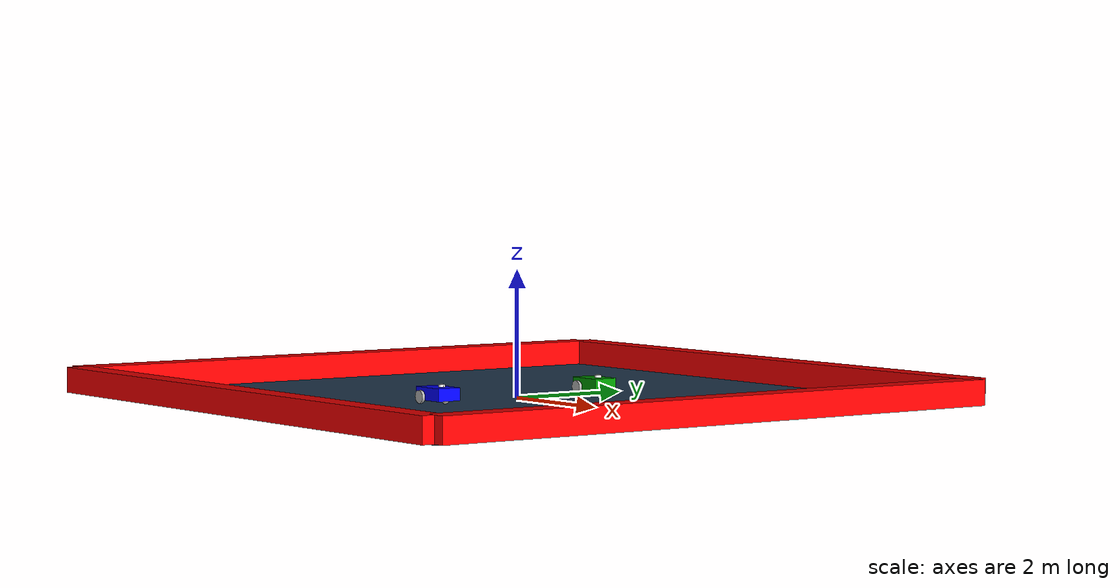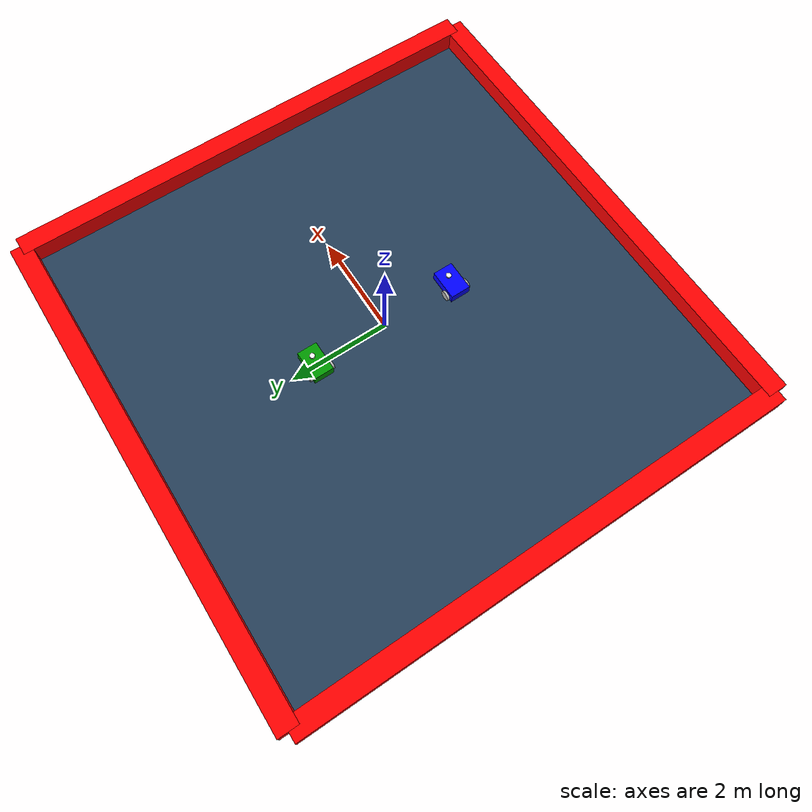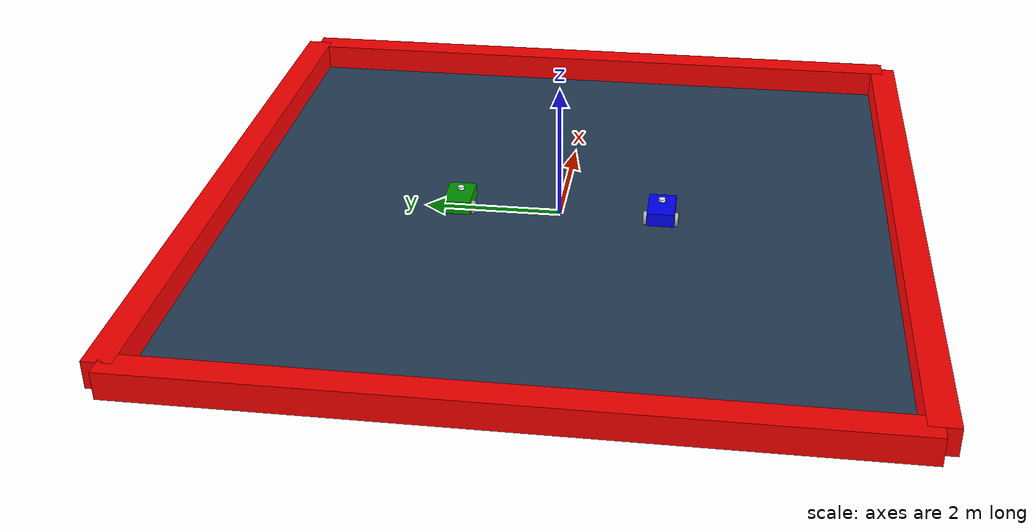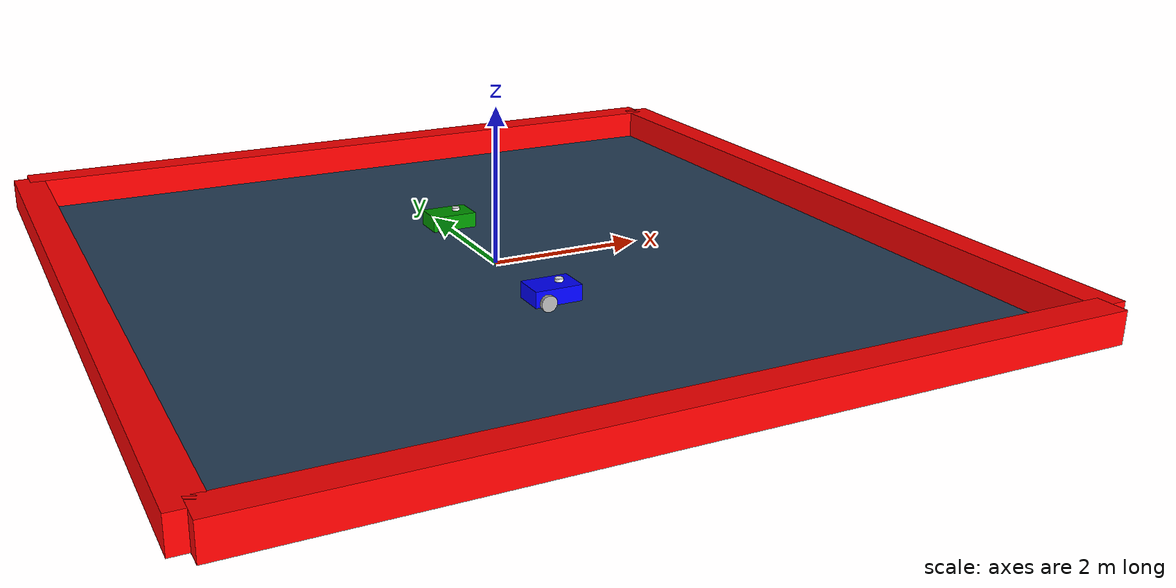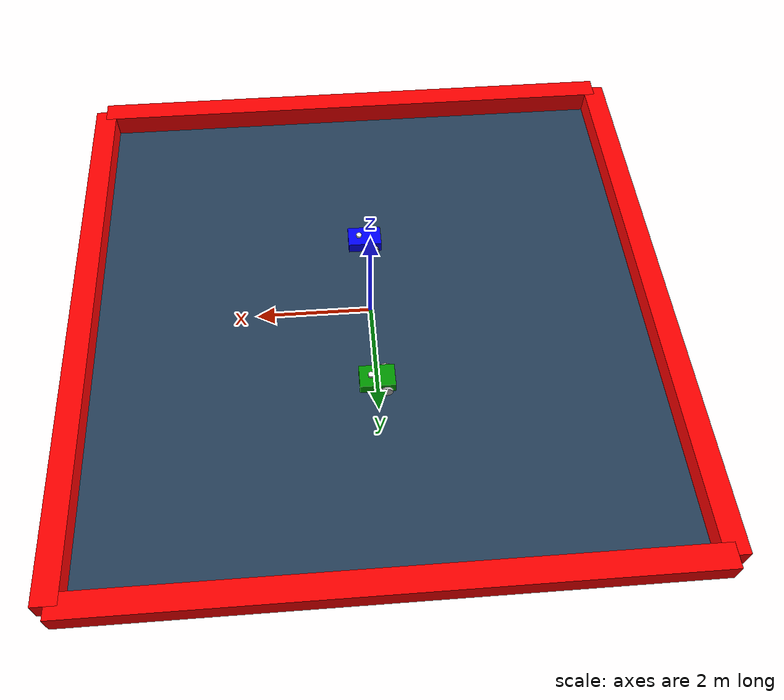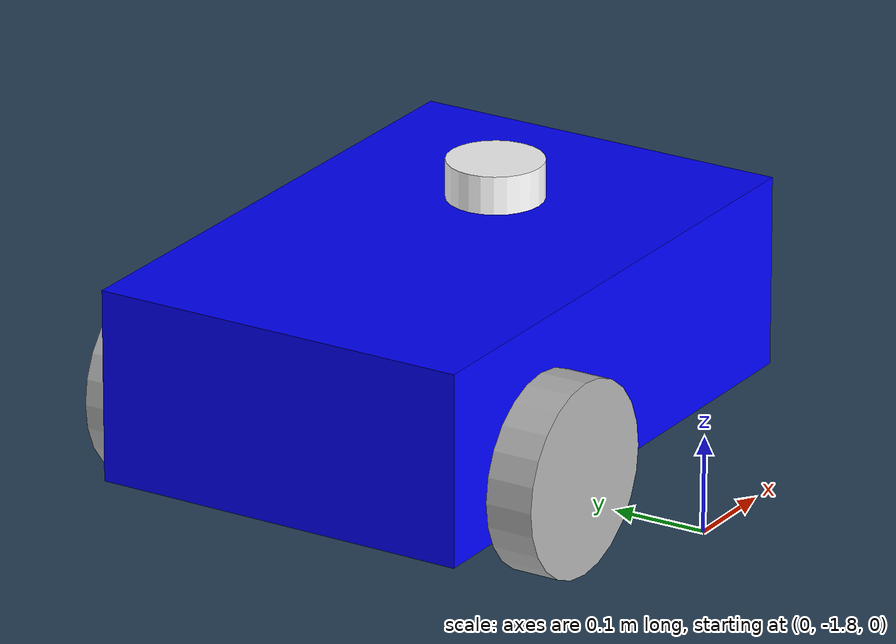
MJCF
<mujoco model="multi_robot">
    <compiler angle="radian" meshdir="assets" />
    <option gravity="0 0 -9.81" timestep="0.002" iterations="50" />

    <asset>
        <material name="grey" rgba="0.7 0.7 0.7 1" />
        <material name="white" rgba="1 1 1 1" />
        <texture name="grid" type="2d" builtin="checker" rgb1=".1 .2 .3" rgb2=".2 .3 .4" width="300" height="300" mark="edge" markrgb=".2 .3 .4"/>
        <material name="grid" texture="grid" texrepeat="1 1" texuniform="true"/>
    </asset>

    <visual>
        <headlight ambient="0.4 0.4 0.4" diffuse="0.8 0.8 0.8"/>
    </visual>

    <worldbody>
        <light pos="0 0 3" dir="0 0 -1" directional="true"/>
        <geom name="floor" type="plane" size="5 5 .05" material="grid" friction="1 0.005 0.0001" contype="1" conaffinity="1"/>
        <body name="box_obstacle_1" pos="0 5 0.2" >
            <geom type="box" size="5 0.2 0.2" rgba="1 0 0 1" contype="3" conaffinity="3"/>
        </body>
        <body name="box_obstacle_2" pos="0 -5 0.2" >
            <geom type="box" size="5 0.2 0.2" rgba="1 0 0 1" contype="3" conaffinity="3"/>
        </body>
        <body name="box_obstacle_3" pos="5 0 0.2" >
            <geom type="box" size="0.2 5 0.2" rgba="1 0 0 1" contype="3" conaffinity="3"/>
        </body>
        <body name="box_obstacle_4" pos="-5 0 0.2" >
            <geom type="box" size="0.2 5 0.2" rgba="1 0 0 1" contype="3" conaffinity="3"/>
        </body>

        <!-- Robot: explorer (Tipo: básico) -->
        <body name="explorer_base" pos="0 1.5 0.1">
            <freejoint/>
            <geom name="explorer_base_visual" type="box" size="0.3 0.2 0.1" pos="0 0 0.05" rgba="0 0.6 0 1" mass="15" contype="0" conaffinity="0"/>

            <!-- Torre de sensores -->
            <body name="explorer_sensor_tower" pos="0.1 0 0.175">
                <geom type="cylinder" size="0.05 0.02" rgba="1 1 1 1" mass="0.1"/>
                <site name="explorer_lidar_site" pos="0.05 0 0" />
                <camera name="explorer_robot_camera" pos="0.05 0 0.02" quat="0.5 0.5 -0.5 -0.5" />
            </body>

            <!-- Ruedas -->
            <body name="explorer_left_wheel" pos="-0.15 0.23 0" quat="0.7071 0.7071 0 0">
                <joint name="explorer_base_left_wheel_joint" type="hinge" axis="0 0 1" damping="0.5"/>
                <geom type="cylinder" size="0.1 0.025" rgba="0.7 0.7 0.7 1" friction="1.5" mass="1"/>
            </body>
            <body name="explorer_right_wheel" pos="-0.15 -0.23 0" quat="0.7071 0.7071 0 0">
                <joint name="explorer_base_right_wheel_joint" type="hinge" axis="0 0 1" damping="0.5"/>
                <geom type="cylinder" size="0.1 0.025" rgba="0.7 0.7 0.7 1" friction="1.5" mass="1"/>
            </body>

            <!-- Rueda loca -->
            <body name="explorer_caster_wheels" pos="0.2 0 -0.05">
                <geom type="sphere" size="0.05" rgba="0.7 0.7 0.7 1" friction="0.005" mass="0.5"/>
            </body>
        </body>

        <!-- Robot: guardian (Tipo: básico) -->
        <body name="guardian_base" pos="0 -1.5 0.1">
            <freejoint/>
            <geom name="guardian_base_visual" type="box" size="0.3 0.2 0.1" pos="0 0 0.05" rgba="0 0 1 1" mass="15" contype="0" conaffinity="0"/>

            <!-- Torre de sensores -->
            <body name="guardian_sensor_tower" pos="0.1 0 0.175">
                <geom type="cylinder" size="0.05 0.02" rgba="1 1 1 1" mass="0.1"/>
                <site name="guardian_lidar_site" pos="0.05 0 0" />
                <camera name="guardian_robot_camera" pos="0.05 0 0.02" quat="0.5 0.5 -0.5 -0.5" />
            </body>

            <!-- Ruedas -->
            <body name="guardian_left_wheel" pos="-0.15 0.23 0" quat="0.7071 0.7071 0 0">
                <joint name="guardian_base_left_wheel_joint" type="hinge" axis="0 0 1" damping="0.5"/>
                <geom type="cylinder" size="0.1 0.025" rgba="0.7 0.7 0.7 1" friction="1.5" mass="1"/>
            </body>
            <body name="guardian_right_wheel" pos="-0.15 -0.23 0" quat="0.7071 0.7071 0 0">
                <joint name="guardian_base_right_wheel_joint" type="hinge" axis="0 0 1" damping="0.5"/>
                <geom type="cylinder" size="0.1 0.025" rgba="0.7 0.7 0.7 1" friction="1.5" mass="1"/>
            </body>

            <!-- Rueda loca -->
            <body name="guardian_caster_wheels" pos="0.2 0 -0.05">
                <geom type="sphere" size="0.05" rgba="0.7 0.7 0.7 1" friction="0.005" mass="0.5"/>
            </body>
        </body>
    </worldbody>
    <sensor>
        <rangefinder name="distancia_explorer" site="explorer_lidar_site" />
        <rangefinder name="distancia_guardian" site="guardian_lidar_site" />
    </sensor>
    <actuator>
        <velocity name="motor_izquierdo_explorer" joint="explorer_base_left_wheel_joint" kv="20" forcerange="-10 10"/>
        <velocity name="motor_derecho_explorer" joint="explorer_base_right_wheel_joint" kv="20" forcerange="-10 10"/>
        <velocity name="motor_izquierdo_guardian" joint="guardian_base_left_wheel_joint" kv="20" forcerange="-10 10"/>
        <velocity name="motor_derecho_guardian" joint="guardian_base_right_wheel_joint" kv="20" forcerange="-10 10"/>
    </actuator>
</mujoco>
